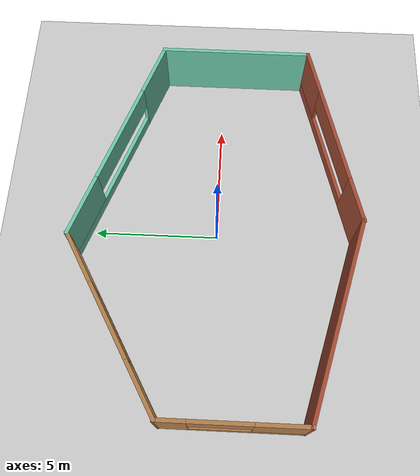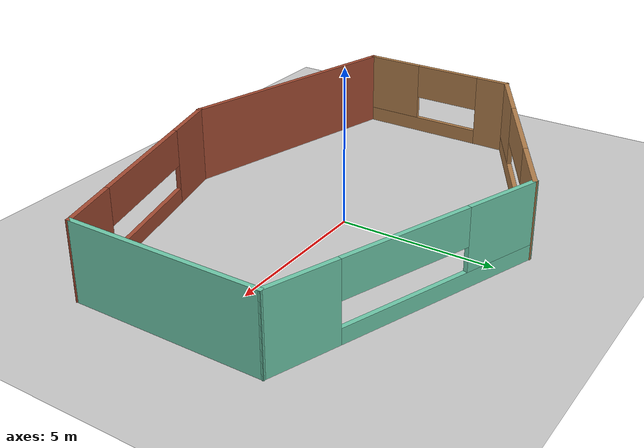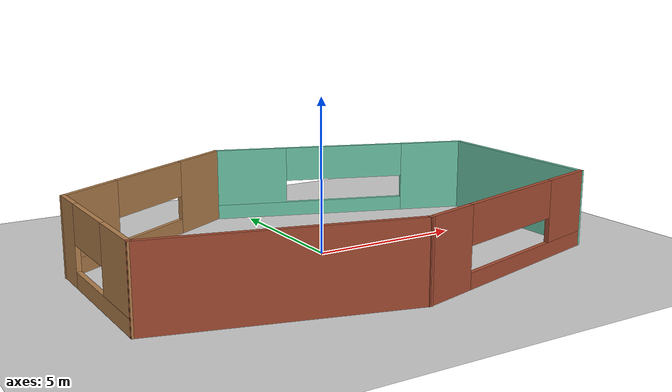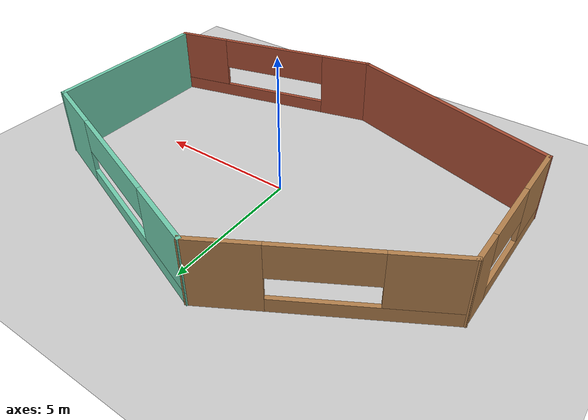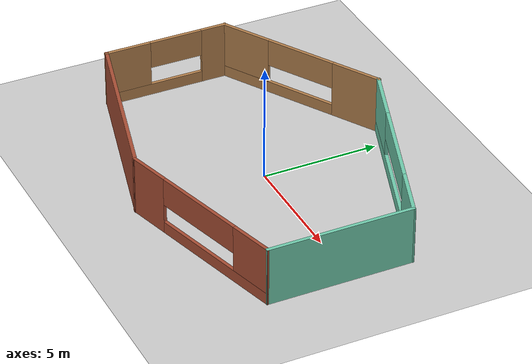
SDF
<sdf version="1.6">
 <world name="default">
  <light name="sun" type="directional">
   <pose>0 0 10 0 -0 0</pose>
   <diffuse>0.8 0.8 0.8 1</diffuse>
   <specular>0.2 0.2 0.2 1</specular>
   <attenuation>
    <range>1000</range>
    <constant>0.9</constant>
    <linear>0.01</linear>
    <quadratic>0.001</quadratic>
   </attenuation>
   <direction>-0.5 0.1 -0.9</direction>
  </light>
  <model name="ground_plane">
   <static>1</static>
   <link name="link">
    <collision name="collision">
     <geometry><plane><normal>0 0 1</normal><size>100 100</size></plane></geometry>
     <surface><friction><ode><mu>100</mu><mu2>50</mu2></ode></friction></surface>
    </collision>
    <visual name="visual">
     <cast_shadows>0</cast_shadows>
     <geometry><plane><normal>0 0 1</normal><size>100 100</size></plane></geometry>
     <material>
      <script><uri>file://media/materials/scripts/gazebo.material</uri><name>Gazebo/Grey</name></script>
     </material>
    </visual>
   </link>
  </model>
  <gravity>0 0 -9.8</gravity>
  <magnetic_field>6e-06 2.3e-05 -4.2e-05</magnetic_field>
  <atmosphere type="adiabatic"/>
  <physics name="default_physics" default="0" type="ode">
   <max_step_size>0.001</max_step_size>
   <real_time_factor>1</real_time_factor>
   <real_time_update_rate>1000</real_time_update_rate>
  </physics>
  <scene><ambient>0.4 0.4 0.4 1</ambient><background>0.7 0.7 0.7 1</background><shadows>1</shadows></scene>
  <spherical_coordinates>
   <surface_model>EARTH_WGS84</surface_model>
   <latitude_deg>0</latitude_deg>
   <longitude_deg>0</longitude_deg>
   <elevation>0</elevation>
   <heading_deg>0</heading_deg>
  </spherical_coordinates>
  <model name="Hexagon">
   <pose>0.00133 0.024219 0 0 -0 0</pose>
   <link name="Wall_10">
    <collision name="Wall_10_Collision">
     <geometry><box><size>6.25 0.15 2.5</size></box></geometry>
     <pose>0 0 1.25 0 -0 0</pose>
    </collision>
    <visual name="Wall_10_Visual">
     <pose>0 0 1.25 0 -0 0</pose>
     <geometry><box><size>6.25 0.15 2.5</size></box></geometry>
     <material>
      <script><uri>file://media/materials/scripts/gazebo.material</uri><name>Gazebo/Grey</name></script>
      <ambient>0.435294 0.796078 0.67451 1</ambient>
     </material>
     <meta><layer>0</layer></meta>
    </visual>
    <pose>7.58585 -0.514434 0 0 -0 1.5708</pose>
   </link>
   <link name="Wall_11">
    <pose>3.29423 4.06057 0 0 -0 2.80016</pose>
    <visual name="Wall_11_Visual_0">
     <pose>-3.45078 0 1.25 0 -0 0</pose>
     <geometry><box><size>2.35747 0.15 2.5</size></box></geometry>
     <material>
      <script><uri>file://media/materials/scripts/gazebo.material</uri><name>Gazebo/Grey</name></script>
      <ambient>0.435294 0.796078 0.67451 1</ambient>
     </material>
     <meta><layer>0</layer></meta>
    </visual>
    <collision name="Wall_11_Collision_0">
     <geometry><box><size>2.35747 0.15 2.5</size></box></geometry>
     <pose>-3.45078 0 1.25 0 -0 0</pose>
    </collision>
    <visual name="Wall_11_Visual_1">
     <pose>1.17873 0 0.25 0 -0 0</pose>
     <geometry><box><size>6.90157 0.15 0.5</size></box></geometry>
     <material>
      <script><uri>file://media/materials/scripts/gazebo.material</uri><name>Gazebo/Grey</name></script>
      <ambient>0.435294 0.796078 0.67451 1</ambient>
     </material>
     <meta><layer>0</layer></meta>
    </visual>
    <collision name="Wall_11_Collision_1">
     <geometry><box><size>6.90157 0.15 0.5</size></box></geometry>
     <pose>1.17873 0 0.25 0 -0 0</pose>
    </collision>
    <visual name="Wall_11_Visual_2">
     <pose>3.33215 0 1.5 0 -0 0</pose>
     <geometry><box><size>2.59475 0.15 2</size></box></geometry>
     <material>
      <script><uri>file://media/materials/scripts/gazebo.material</uri><name>Gazebo/Grey</name></script>
      <ambient>0.435294 0.796078 0.67451 1</ambient>
     </material>
     <meta><layer>0</layer></meta>
    </visual>
    <collision name="Wall_11_Collision_2">
     <geometry><box><size>2.59475 0.15 2</size></box></geometry>
     <pose>3.33215 0 1.5 0 -0 0</pose>
    </collision>
    <visual name="Wall_11_Visual_3">
     <pose>-0.118639 0 1.9 0 -0 0</pose>
     <geometry><box><size>4.30682 0.15 1.2</size></box></geometry>
     <material>
      <script><uri>file://media/materials/scripts/gazebo.material</uri><name>Gazebo/Grey</name></script>
      <ambient>0.435294 0.796078 0.67451 1</ambient>
     </material>
     <meta><layer>0</layer></meta>
    </visual>
    <collision name="Wall_11_Collision_3">
     <geometry><box><size>4.30682 0.15 1.2</size></box></geometry>
     <pose>-0.118639 0 1.9 0 -0 0</pose>
    </collision>
   </link>
   <link name="Wall_6">
    <pose>-4.28829 3.68557 0 0 0 -2.61799</pose>
    <visual name="Wall_6_Visual_0">
     <pose>-2.74944 0 1.25 0 -0 0</pose>
     <geometry><box><size>2.25112 0.15 2.5</size></box></geometry>
     <material>
      <script><uri>file://media/materials/scripts/gazebo.material</uri><name>Gazebo/Wood</name></script>
      <ambient>1 1 1 1</ambient>
     </material>
     <meta><layer>0</layer></meta>
    </visual>
    <collision name="Wall_6_Collision_0">
     <geometry><box><size>2.25112 0.15 2.5</size></box></geometry>
     <pose>-2.74944 0 1.25 0 -0 0</pose>
    </collision>
    <visual name="Wall_6_Visual_1">
     <pose>1.12556 0 0.25 0 -0 0</pose>
     <geometry><box><size>5.49888 0.15 0.5</size></box></geometry>
     <material>
      <script><uri>file://media/materials/scripts/gazebo.material</uri><name>Gazebo/Wood</name></script>
      <ambient>1 1 1 1</ambient>
     </material>
     <meta><layer>0</layer></meta>
    </visual>
    <collision name="Wall_6_Collision_1">
     <geometry><box><size>5.49888 0.15 0.5</size></box></geometry>
     <pose>1.12556 0 0.25 0 -0 0</pose>
    </collision>
    <visual name="Wall_6_Visual_2">
     <pose>2.71154 0 1.5 0 -0 0</pose>
     <geometry><box><size>2.32693 0.15 2</size></box></geometry>
     <material>
      <script><uri>file://media/materials/scripts/gazebo.material</uri><name>Gazebo/Wood</name></script>
      <ambient>1 1 1 1</ambient>
     </material>
     <meta><layer>0</layer></meta>
    </visual>
    <collision name="Wall_6_Collision_2">
     <geometry><box><size>2.32693 0.15 2</size></box></geometry>
     <pose>2.71154 0 1.5 0 -0 0</pose>
    </collision>
    <visual name="Wall_6_Visual_3">
     <pose>-0.037903 0 1.9 0 -0 0</pose>
     <geometry><box><size>3.17195 0.15 1.2</size></box></geometry>
     <material>
      <script><uri>file://media/materials/scripts/gazebo.material</uri><name>Gazebo/Wood</name></script>
      <ambient>1 1 1 1</ambient>
     </material>
     <meta><layer>0</layer></meta>
    </visual>
    <collision name="Wall_6_Collision_3">
     <geometry><box><size>3.17195 0.15 1.2</size></box></geometry>
     <pose>-0.037903 0 1.9 0 -0 0</pose>
    </collision>
   </link>
   <link name="Wall_7">
    <pose>-7.57918 -0.889434 0 0 0 -1.5708</pose>
    <visual name="Wall_7_Visual_0">
     <pose>-2.1653 0 1.25 0 -0 0</pose>
     <geometry><box><size>1.1694 0.15 2.5</size></box></geometry>
     <material>
      <script><uri>file://media/materials/scripts/gazebo.material</uri><name>Gazebo/Wood</name></script>
      <ambient>1 1 1 1</ambient>
     </material>
     <meta><layer>0</layer></meta>
    </visual>
    <collision name="Wall_7_Collision_0">
     <geometry><box><size>1.1694 0.15 2.5</size></box></geometry>
     <pose>-2.1653 0 1.25 0 -0 0</pose>
    </collision>
    <visual name="Wall_7_Visual_1">
     <pose>0.584702 0 0.25 0 -0 0</pose>
     <geometry><box><size>4.3306 0.15 0.5</size></box></geometry>
     <material>
      <script><uri>file://media/materials/scripts/gazebo.material</uri><name>Gazebo/Wood</name></script>
      <ambient>1 1 1 1</ambient>
     </material>
     <meta><layer>0</layer></meta>
    </visual>
    <collision name="Wall_7_Collision_1">
     <geometry><box><size>4.3306 0.15 0.5</size></box></geometry>
     <pose>0.584702 0 0.25 0 -0 0</pose>
    </collision>
    <visual name="Wall_7_Visual_2">
     <pose>1.74104 0 1.5 0 -0 0</pose>
     <geometry><box><size>2.01791 0.15 2</size></box></geometry>
     <material>
      <script><uri>file://media/materials/scripts/gazebo.material</uri><name>Gazebo/Wood</name></script>
      <ambient>1 1 1 1</ambient>
     </material>
     <meta><layer>0</layer></meta>
    </visual>
    <collision name="Wall_7_Collision_2">
     <geometry><box><size>2.01791 0.15 2</size></box></geometry>
     <pose>1.74104 0 1.5 0 -0 0</pose>
    </collision>
    <visual name="Wall_7_Visual_3">
     <pose>-0.424253 0 1.9 0 -0 0</pose>
     <geometry><box><size>2.31269 0.15 1.2</size></box></geometry>
     <material>
      <script><uri>file://media/materials/scripts/gazebo.material</uri><name>Gazebo/Wood</name></script>
      <ambient>1 1 1 1</ambient>
     </material>
     <meta><layer>0</layer></meta>
    </visual>
    <collision name="Wall_7_Collision_3">
     <geometry><box><size>2.31269 0.15 1.2</size></box></geometry>
     <pose>-0.424253 0 1.9 0 -0 0</pose>
    </collision>
   </link>
   <link name="Wall_8">
    <collision name="Wall_8_Collision">
     <geometry><box><size>8 0.15 2.5</size></box></geometry>
     <pose>0 0 1.25 0 -0 0</pose>
    </collision>
    <visual name="Wall_8_Visual">
     <pose>0 0 1.25 0 -0 0</pose>
     <geometry><box><size>8 0.15 2.5</size></box></geometry>
     <material>
      <script><uri>file://media/materials/scripts/gazebo.material</uri><name>Gazebo/Bricks</name></script>
      <ambient>1 1 1 1</ambient>
     </material>
     <meta><layer>0</layer></meta>
    </visual>
    <pose>-3.78792 -4.5803 0 0 0 -0.261799</pose>
   </link>
   <link name="Wall_9">
    <pose>3.79459 -4.5803 0 0 -0 0.261799</pose>
    <visual name="Wall_9_Visual_0">
     <pose>-3.05819 0 1.25 0 -0 0</pose>
     <geometry><box><size>1.88362 0.15 2.5</size></box></geometry>
     <material>
      <script><uri>file://media/materials/scripts/gazebo.material</uri><name>Gazebo/Bricks</name></script>
      <ambient>1 1 1 1</ambient>
     </material>
     <meta><layer>0</layer></meta>
    </visual>
    <collision name="Wall_9_Collision_0">
     <geometry><box><size>1.88362 0.15 2.5</size></box></geometry>
     <pose>-3.05819 0 1.25 0 -0 0</pose>
    </collision>
    <visual name="Wall_9_Visual_1">
     <pose>0.94181 0 0.25 0 -0 0</pose>
     <geometry><box><size>6.11638 0.15 0.5</size></box></geometry>
     <material>
      <script><uri>file://media/materials/scripts/gazebo.material</uri><name>Gazebo/Bricks</name></script>
      <ambient>1 1 1 1</ambient>
     </material>
     <meta><layer>0</layer></meta>
    </visual>
    <collision name="Wall_9_Collision_1">
     <geometry><box><size>6.11638 0.15 0.5</size></box></geometry>
     <pose>0.94181 0 0.25 0 -0 0</pose>
    </collision>
    <visual name="Wall_9_Visual_2">
     <pose>3.00838 0 1.5 0 -0 0</pose>
     <geometry><box><size>1.98324 0.15 2</size></box></geometry>
     <material>
      <script><uri>file://media/materials/scripts/gazebo.material</uri><name>Gazebo/Bricks</name></script>
      <ambient>1 1 1 1</ambient>
     </material>
     <meta><layer>0</layer></meta>
    </visual>
    <collision name="Wall_9_Collision_2">
     <geometry><box><size>1.98324 0.15 2</size></box></geometry>
     <pose>3.00838 0 1.5 0 -0 0</pose>
    </collision>
    <visual name="Wall_9_Visual_3">
     <pose>-0.049809 0 1.9 0 -0 0</pose>
     <geometry><box><size>4.13314 0.15 1.2</size></box></geometry>
     <material>
      <script><uri>file://media/materials/scripts/gazebo.material</uri><name>Gazebo/Bricks</name></script>
      <ambient>1 1 1 1</ambient>
     </material>
     <meta><layer>0</layer></meta>
    </visual>
    <collision name="Wall_9_Collision_3">
     <geometry><box><size>4.13314 0.15 1.2</size></box></geometry>
     <pose>-0.049809 0 1.9 0 -0 0</pose>
    </collision>
   </link>
   <static>1</static>
  </model>
  <plugin filename="libcollision_map_creator.so" name="collision_map_creator"/>
 </world>
</sdf>
